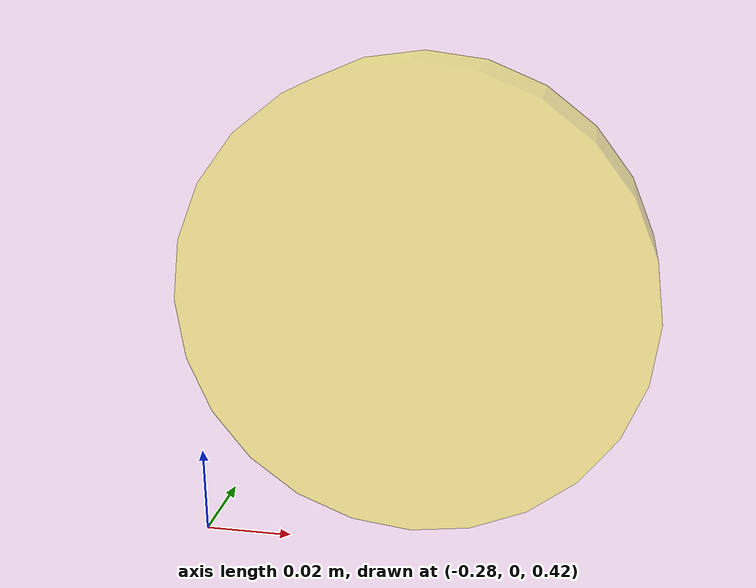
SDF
<?xml version="1.0" ?>
<sdf version="1.5">

  <model name="ellow_light">
    <static>true</static>

      <link name='Yellow_light_source'>
      <pose>-0.23 0 0.48 1.57 0 0</pose>

      <light name='yellow' type='spot'>
        <pose>0 0 0.0 1.57 0 0</pose>
        <attenuation>
          <range>30</range>
          <linear>0.05</linear>
        </attenuation>
        <diffuse>0.5 1 1 1</diffuse>
        <specular>1 1 1 1</specular>
        <spot>
          <inner_angle>0.3</inner_angle>
          <outer_angle>0.35</outer_angle>
          <falloff>1</falloff>
        </spot>
        <direction>0 0 -1</direction>
      </light>

      <visual name='yellow'>
        <geometry>
          <cylinder>
            <radius>0.05</radius>
            <length>0.02</length>
          </cylinder>
          <sphere>
            <radius>0.08</radius>
          </sphere>
        </geometry>
        <transparency>0.6</transparency>

        <material>
          <ambient>1 1 0 1</ambient>
          <diffuse>1 1 0 1</diffuse>
          <specular>1 1 1 1</specular>
          <emissive>1 1 0 1 </emissive>
        </material>

      </visual>
    </link>

  </model>

</sdf>
